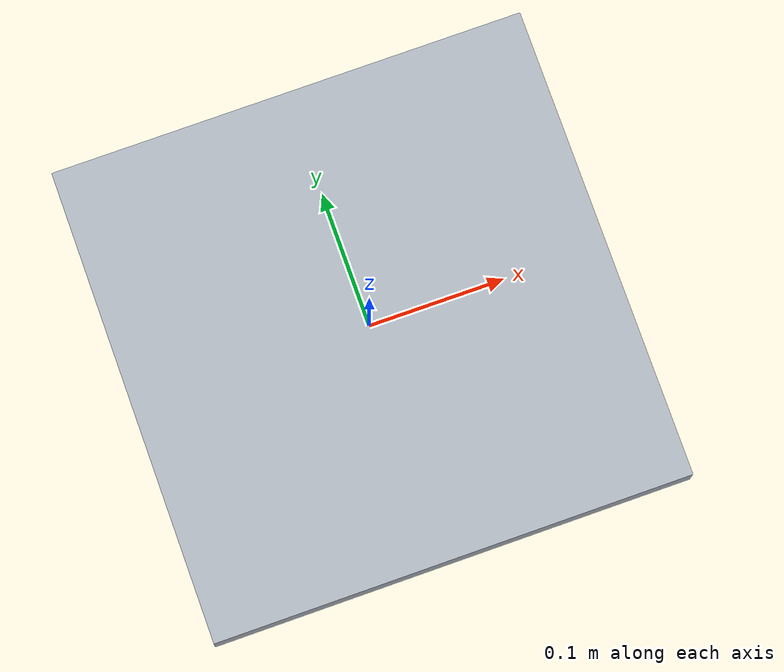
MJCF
<mujoco model="plane_flat">
  <asset>
    <mesh file="meshes/plane_surfaces/flat_horizontal_box.obj" name="plane_flat_mesh"/>
  </asset>
  <worldbody>
    <body>
      <body name="object">
        <geom mesh="plane_flat_mesh" type="mesh"
              solimp="0.998 0.998 0.001" solref="0.001 1"
              density="3.125" friction="0.95 0.3 0.1" rgba="0.75 0.78 0.82 1"
              contype="1" conaffinity="1" group="0"/>
        <geom mesh="plane_flat_mesh" type="mesh"
              solimp="0.998 0.998 0.001" solref="0.001 1"
              density="1e-8" rgba="0.75 0.78 0.82 1"
              contype="0" conaffinity="0" group="1"/>
      </body>
      <site rgba="0 0 0 0" size="0.005" pos="0 0 -0.0125" name="bottom_site"/>
      <site rgba="0 0 0 0" size="0.005" pos="0 0 0.0125" name="top_site"/>
      <site rgba="0 0 0 0" size="0.005" pos="0.175 0.175 0" name="horizontal_radius_site"/>
    </body>
  </worldbody>
</mujoco>
